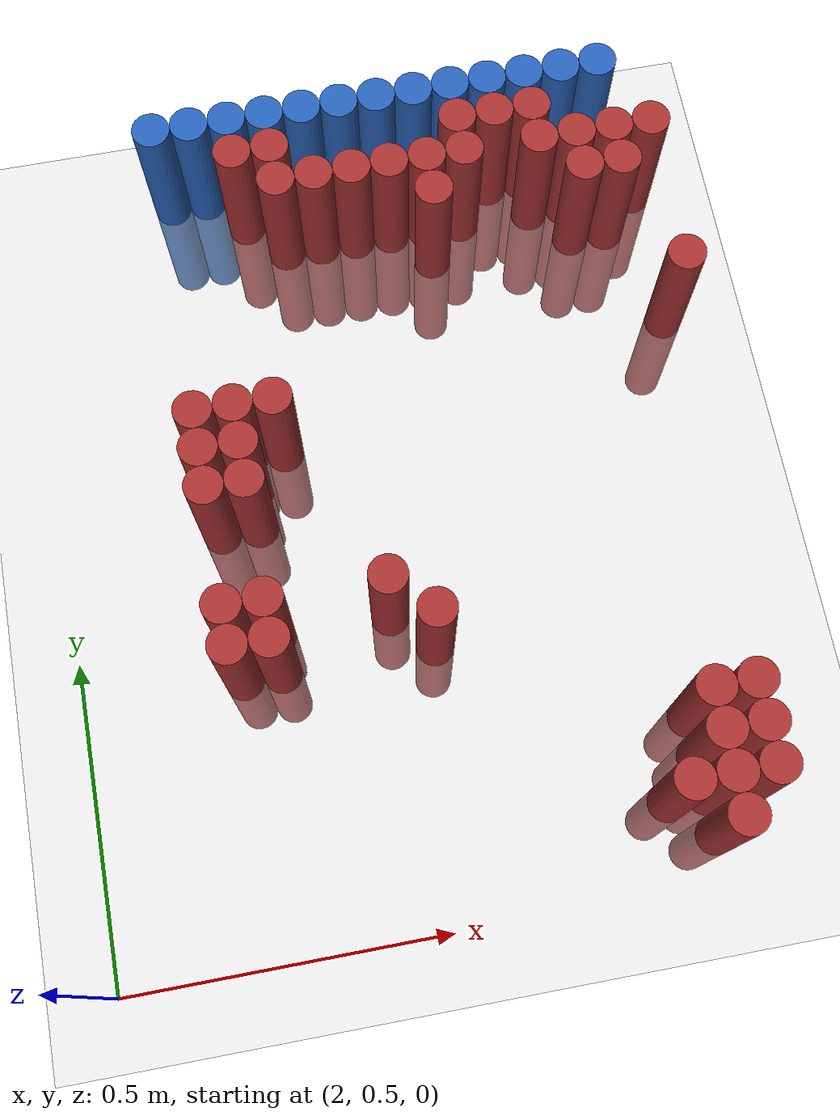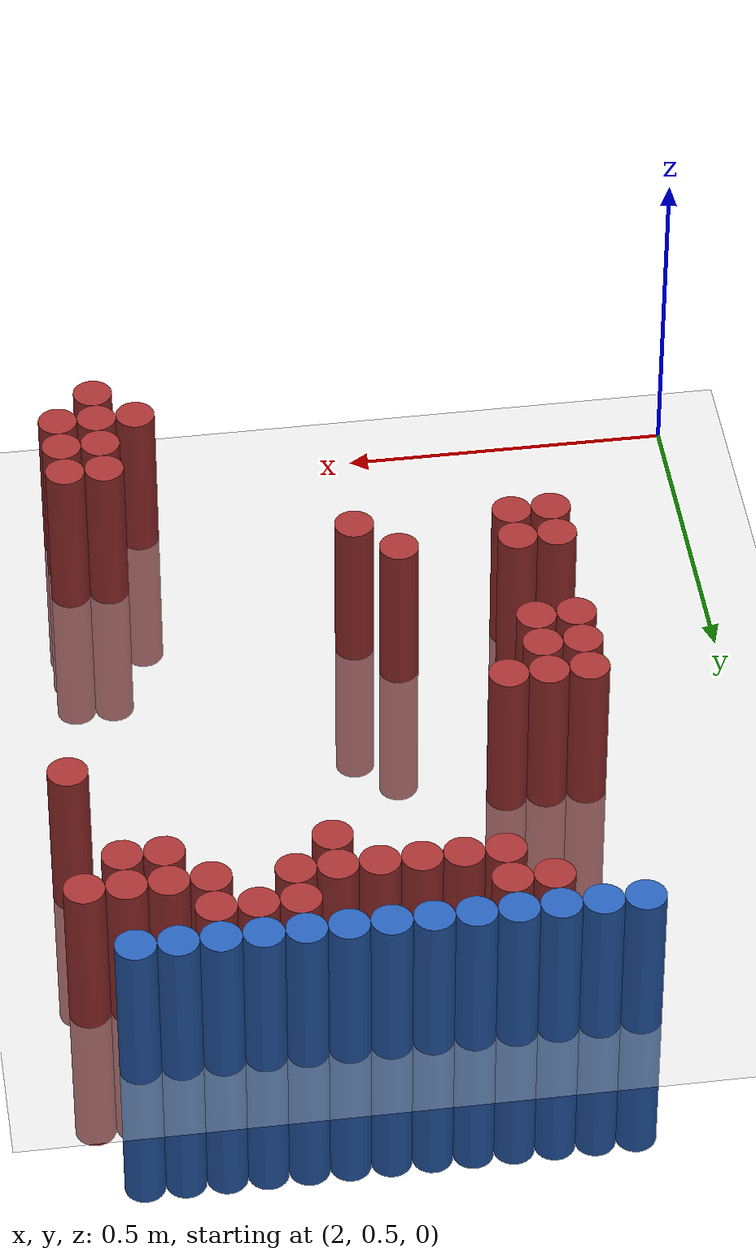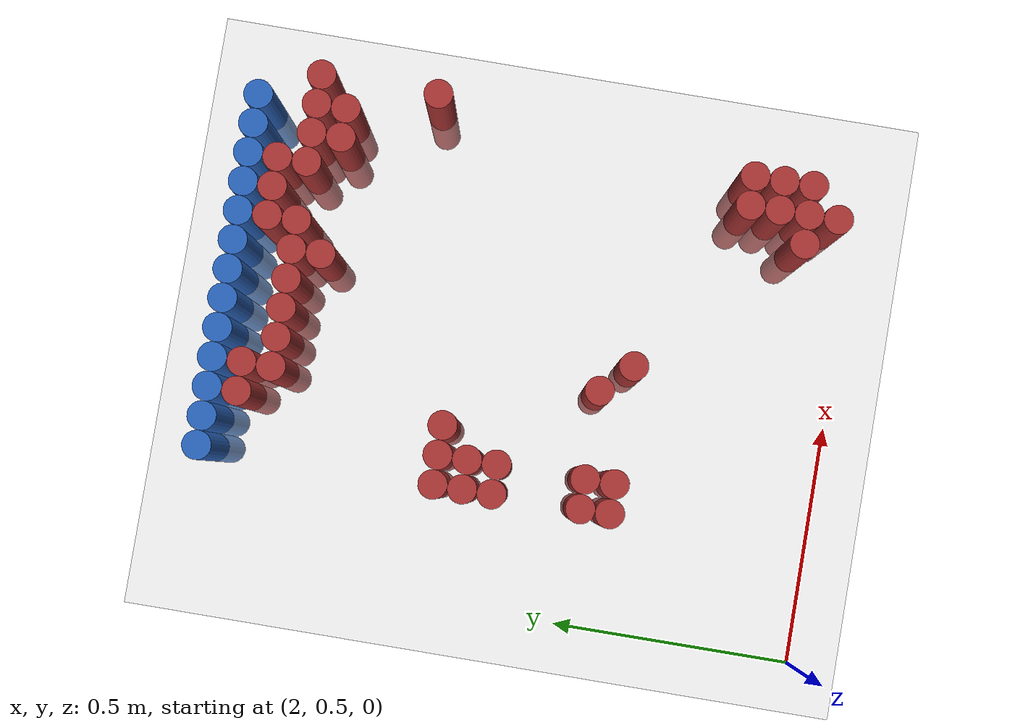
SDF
<sdf version="1.6">
 <world name="default">
  <model name="ground_plane">
   <static>1</static>
   <link name="link">
    <collision name="collision">
     <geometry><plane><normal>0 0 1</normal><size>100 100</size></plane></geometry>
     <surface><friction><ode><mu>100</mu><mu2>50</mu2></ode></friction></surface>
    </collision>
    <visual name="visual">
     <cast_shadows>0</cast_shadows>
     <geometry><plane><normal>0 0 1</normal><size>100 100</size></plane></geometry>
     <material>
      <script><uri>file://media/materials/scripts/gazebo.material</uri><name>Gazebo/Grey</name></script>
     </material>
    </visual>
   </link>
  </model>
  <model name="unit_cylinder_98">
   <static>1</static>
   <pose>2.250000 1.770000 0.000000 0.000000 0.000000 0.000000</pose>
   <link name="link">
    <inertial>
     <mass>1</mass>
     <inertia><ixx>0.145833</ixx><ixy>0</ixy><ixz>0</ixz><iyy>0.145833</iyy><iyz>0</iyz><izz>0.125</izz></inertia>
    </inertial>
    <collision name="collision">
     <geometry><cylinder><radius>0.030000</radius><length>0.5</length></cylinder></geometry>
    </collision>
    <visual name="visual">
     <geometry><cylinder><radius>0.030000</radius><length>0.5</length></cylinder></geometry>
     <material>
      <ambient>0.152000 0.379000 0.720000 1</ambient>
      <diffuse>0.152000 0.379000 0.720000 1</diffuse>
     </material>
     <material>
      <script><name>Gazebo/Grey</name><uri>file://media/materials/scripts/gazebo.material</uri></script>
     </material>
    </visual>
   </link>
  </model>
  <model name="unit_cylinder_99">
   <static>1</static>
   <pose>2.310000 1.770000 0.000000 0.000000 0.000000 0.000000</pose>
   <link name="link">
    <inertial>
     <mass>1</mass>
     <inertia><ixx>0.145833</ixx><ixy>0</ixy><ixz>0</ixz><iyy>0.145833</iyy><iyz>0</iyz><izz>0.125</izz></inertia>
    </inertial>
    <collision name="collision">
     <geometry><cylinder><radius>0.030000</radius><length>0.5</length></cylinder></geometry>
    </collision>
    <visual name="visual">
     <geometry><cylinder><radius>0.030000</radius><length>0.5</length></cylinder></geometry>
     <material>
      <ambient>0.152000 0.379000 0.720000 1</ambient>
      <diffuse>0.152000 0.379000 0.720000 1</diffuse>
     </material>
     <material>
      <script><name>Gazebo/Grey</name><uri>file://media/materials/scripts/gazebo.material</uri></script>
     </material>
    </visual>
   </link>
  </model>
  <model name="unit_cylinder_100">
   <static>1</static>
   <pose>2.370000 1.770000 0.000000 0.000000 0.000000 0.000000</pose>
   <link name="link">
    <inertial>
     <mass>1</mass>
     <inertia><ixx>0.145833</ixx><ixy>0</ixy><ixz>0</ixz><iyy>0.145833</iyy><iyz>0</iyz><izz>0.125</izz></inertia>
    </inertial>
    <collision name="collision">
     <geometry><cylinder><radius>0.030000</radius><length>0.5</length></cylinder></geometry>
    </collision>
    <visual name="visual">
     <geometry><cylinder><radius>0.030000</radius><length>0.5</length></cylinder></geometry>
     <material>
      <ambient>0.152000 0.379000 0.720000 1</ambient>
      <diffuse>0.152000 0.379000 0.720000 1</diffuse>
     </material>
     <material>
      <script><name>Gazebo/Grey</name><uri>file://media/materials/scripts/gazebo.material</uri></script>
     </material>
    </visual>
   </link>
  </model>
  <model name="unit_cylinder_101">
   <static>1</static>
   <pose>2.430000 1.770000 0.000000 0.000000 0.000000 0.000000</pose>
   <link name="link">
    <inertial>
     <mass>1</mass>
     <inertia><ixx>0.145833</ixx><ixy>0</ixy><ixz>0</ixz><iyy>0.145833</iyy><iyz>0</iyz><izz>0.125</izz></inertia>
    </inertial>
    <collision name="collision">
     <geometry><cylinder><radius>0.030000</radius><length>0.5</length></cylinder></geometry>
    </collision>
    <visual name="visual">
     <geometry><cylinder><radius>0.030000</radius><length>0.5</length></cylinder></geometry>
     <material>
      <ambient>0.152000 0.379000 0.720000 1</ambient>
      <diffuse>0.152000 0.379000 0.720000 1</diffuse>
     </material>
     <material>
      <script><name>Gazebo/Grey</name><uri>file://media/materials/scripts/gazebo.material</uri></script>
     </material>
    </visual>
   </link>
  </model>
  <model name="unit_cylinder_102">
   <static>1</static>
   <pose>2.490000 1.770000 0.000000 0.000000 0.000000 0.000000</pose>
   <link name="link">
    <inertial>
     <mass>1</mass>
     <inertia><ixx>0.145833</ixx><ixy>0</ixy><ixz>0</ixz><iyy>0.145833</iyy><iyz>0</iyz><izz>0.125</izz></inertia>
    </inertial>
    <collision name="collision">
     <geometry><cylinder><radius>0.030000</radius><length>0.5</length></cylinder></geometry>
    </collision>
    <visual name="visual">
     <geometry><cylinder><radius>0.030000</radius><length>0.5</length></cylinder></geometry>
     <material>
      <ambient>0.152000 0.379000 0.720000 1</ambient>
      <diffuse>0.152000 0.379000 0.720000 1</diffuse>
     </material>
     <material>
      <script><name>Gazebo/Grey</name><uri>file://media/materials/scripts/gazebo.material</uri></script>
     </material>
    </visual>
   </link>
  </model>
  <model name="unit_cylinder_103">
   <static>1</static>
   <pose>2.550000 1.770000 0.000000 0.000000 0.000000 0.000000</pose>
   <link name="link">
    <inertial>
     <mass>1</mass>
     <inertia><ixx>0.145833</ixx><ixy>0</ixy><ixz>0</ixz><iyy>0.145833</iyy><iyz>0</iyz><izz>0.125</izz></inertia>
    </inertial>
    <collision name="collision">
     <geometry><cylinder><radius>0.030000</radius><length>0.5</length></cylinder></geometry>
    </collision>
    <visual name="visual">
     <geometry><cylinder><radius>0.030000</radius><length>0.5</length></cylinder></geometry>
     <material>
      <ambient>0.152000 0.379000 0.720000 1</ambient>
      <diffuse>0.152000 0.379000 0.720000 1</diffuse>
     </material>
     <material>
      <script><name>Gazebo/Grey</name><uri>file://media/materials/scripts/gazebo.material</uri></script>
     </material>
    </visual>
   </link>
  </model>
  <model name="unit_cylinder_104">
   <static>1</static>
   <pose>2.610000 1.770000 0.000000 0.000000 0.000000 0.000000</pose>
   <link name="link">
    <inertial>
     <mass>1</mass>
     <inertia><ixx>0.145833</ixx><ixy>0</ixy><ixz>0</ixz><iyy>0.145833</iyy><iyz>0</iyz><izz>0.125</izz></inertia>
    </inertial>
    <collision name="collision">
     <geometry><cylinder><radius>0.030000</radius><length>0.5</length></cylinder></geometry>
    </collision>
    <visual name="visual">
     <geometry><cylinder><radius>0.030000</radius><length>0.5</length></cylinder></geometry>
     <material>
      <ambient>0.152000 0.379000 0.720000 1</ambient>
      <diffuse>0.152000 0.379000 0.720000 1</diffuse>
     </material>
     <material>
      <script><name>Gazebo/Grey</name><uri>file://media/materials/scripts/gazebo.material</uri></script>
     </material>
    </visual>
   </link>
  </model>
  <model name="unit_cylinder_105">
   <static>1</static>
   <pose>2.670000 1.770000 0.000000 0.000000 0.000000 0.000000</pose>
   <link name="link">
    <inertial>
     <mass>1</mass>
     <inertia><ixx>0.145833</ixx><ixy>0</ixy><ixz>0</ixz><iyy>0.145833</iyy><iyz>0</iyz><izz>0.125</izz></inertia>
    </inertial>
    <collision name="collision">
     <geometry><cylinder><radius>0.030000</radius><length>0.5</length></cylinder></geometry>
    </collision>
    <visual name="visual">
     <geometry><cylinder><radius>0.030000</radius><length>0.5</length></cylinder></geometry>
     <material>
      <ambient>0.152000 0.379000 0.720000 1</ambient>
      <diffuse>0.152000 0.379000 0.720000 1</diffuse>
     </material>
     <material>
      <script><name>Gazebo/Grey</name><uri>file://media/materials/scripts/gazebo.material</uri></script>
     </material>
    </visual>
   </link>
  </model>
  <model name="unit_cylinder_106">
   <static>1</static>
   <pose>2.730000 1.770000 0.000000 0.000000 0.000000 0.000000</pose>
   <link name="link">
    <inertial>
     <mass>1</mass>
     <inertia><ixx>0.145833</ixx><ixy>0</ixy><ixz>0</ixz><iyy>0.145833</iyy><iyz>0</iyz><izz>0.125</izz></inertia>
    </inertial>
    <collision name="collision">
     <geometry><cylinder><radius>0.030000</radius><length>0.5</length></cylinder></geometry>
    </collision>
    <visual name="visual">
     <geometry><cylinder><radius>0.030000</radius><length>0.5</length></cylinder></geometry>
     <material>
      <ambient>0.152000 0.379000 0.720000 1</ambient>
      <diffuse>0.152000 0.379000 0.720000 1</diffuse>
     </material>
     <material>
      <script><name>Gazebo/Grey</name><uri>file://media/materials/scripts/gazebo.material</uri></script>
     </material>
    </visual>
   </link>
  </model>
  <model name="unit_cylinder_107">
   <static>1</static>
   <pose>2.790000 1.770000 0.000000 0.000000 0.000000 0.000000</pose>
   <link name="link">
    <inertial>
     <mass>1</mass>
     <inertia><ixx>0.145833</ixx><ixy>0</ixy><ixz>0</ixz><iyy>0.145833</iyy><iyz>0</iyz><izz>0.125</izz></inertia>
    </inertial>
    <collision name="collision">
     <geometry><cylinder><radius>0.030000</radius><length>0.5</length></cylinder></geometry>
    </collision>
    <visual name="visual">
     <geometry><cylinder><radius>0.030000</radius><length>0.5</length></cylinder></geometry>
     <material>
      <ambient>0.152000 0.379000 0.720000 1</ambient>
      <diffuse>0.152000 0.379000 0.720000 1</diffuse>
     </material>
     <material>
      <script><name>Gazebo/Grey</name><uri>file://media/materials/scripts/gazebo.material</uri></script>
     </material>
    </visual>
   </link>
  </model>
  <model name="unit_cylinder_108">
   <static>1</static>
   <pose>2.850000 1.770000 0.000000 0.000000 0.000000 0.000000</pose>
   <link name="link">
    <inertial>
     <mass>1</mass>
     <inertia><ixx>0.145833</ixx><ixy>0</ixy><ixz>0</ixz><iyy>0.145833</iyy><iyz>0</iyz><izz>0.125</izz></inertia>
    </inertial>
    <collision name="collision">
     <geometry><cylinder><radius>0.030000</radius><length>0.5</length></cylinder></geometry>
    </collision>
    <visual name="visual">
     <geometry><cylinder><radius>0.030000</radius><length>0.5</length></cylinder></geometry>
     <material>
      <ambient>0.152000 0.379000 0.720000 1</ambient>
      <diffuse>0.152000 0.379000 0.720000 1</diffuse>
     </material>
     <material>
      <script><name>Gazebo/Grey</name><uri>file://media/materials/scripts/gazebo.material</uri></script>
     </material>
    </visual>
   </link>
  </model>
  <model name="unit_cylinder_109">
   <static>1</static>
   <pose>2.910000 1.770000 0.000000 0.000000 0.000000 0.000000</pose>
   <link name="link">
    <inertial>
     <mass>1</mass>
     <inertia><ixx>0.145833</ixx><ixy>0</ixy><ixz>0</ixz><iyy>0.145833</iyy><iyz>0</iyz><izz>0.125</izz></inertia>
    </inertial>
    <collision name="collision">
     <geometry><cylinder><radius>0.030000</radius><length>0.5</length></cylinder></geometry>
    </collision>
    <visual name="visual">
     <geometry><cylinder><radius>0.030000</radius><length>0.5</length></cylinder></geometry>
     <material>
      <ambient>0.152000 0.379000 0.720000 1</ambient>
      <diffuse>0.152000 0.379000 0.720000 1</diffuse>
     </material>
     <material>
      <script><name>Gazebo/Grey</name><uri>file://media/materials/scripts/gazebo.material</uri></script>
     </material>
    </visual>
   </link>
  </model>
  <model name="unit_cylinder_110">
   <static>1</static>
   <pose>2.970000 1.770000 0.000000 0.000000 0.000000 0.000000</pose>
   <link name="link">
    <inertial>
     <mass>1</mass>
     <inertia><ixx>0.145833</ixx><ixy>0</ixy><ixz>0</ixz><iyy>0.145833</iyy><iyz>0</iyz><izz>0.125</izz></inertia>
    </inertial>
    <collision name="collision">
     <geometry><cylinder><radius>0.030000</radius><length>0.5</length></cylinder></geometry>
    </collision>
    <visual name="visual">
     <geometry><cylinder><radius>0.030000</radius><length>0.5</length></cylinder></geometry>
     <material>
      <ambient>0.152000 0.379000 0.720000 1</ambient>
      <diffuse>0.152000 0.379000 0.720000 1</diffuse>
     </material>
     <material>
      <script><name>Gazebo/Grey</name><uri>file://media/materials/scripts/gazebo.material</uri></script>
     </material>
    </visual>
   </link>
  </model>
  <model name="unit_cylinder_125">
   <static>1</static>
   <pose>2.370000 1.710000 0.000000 0.000000 0.000000 0.000000</pose>
   <link name="link">
    <inertial>
     <mass>1</mass>
     <inertia><ixx>0.145833</ixx><ixy>0</ixy><ixz>0</ixz><iyy>0.145833</iyy><iyz>0</iyz><izz>0.125</izz></inertia>
    </inertial>
    <collision name="collision">
     <geometry><cylinder><radius>0.030000</radius><length>0.5</length></cylinder></geometry>
    </collision>
    <visual name="visual">
     <geometry><cylinder><radius>0.030000</radius><length>0.5</length></cylinder></geometry>
     <material>
      <ambient>0.648000 0.192000 0.192000 1</ambient>
      <diffuse>0.648000 0.192000 0.192000 1</diffuse>
     </material>
     <material>
      <script><name>Gazebo/Grey</name><uri>file://media/materials/scripts/gazebo.material</uri></script>
     </material>
    </visual>
   </link>
  </model>
  <model name="unit_cylinder_126">
   <static>1</static>
   <pose>2.430000 1.710000 0.000000 0.000000 0.000000 0.000000</pose>
   <link name="link">
    <inertial>
     <mass>1</mass>
     <inertia><ixx>0.145833</ixx><ixy>0</ixy><ixz>0</ixz><iyy>0.145833</iyy><iyz>0</iyz><izz>0.125</izz></inertia>
    </inertial>
    <collision name="collision">
     <geometry><cylinder><radius>0.030000</radius><length>0.5</length></cylinder></geometry>
    </collision>
    <visual name="visual">
     <geometry><cylinder><radius>0.030000</radius><length>0.5</length></cylinder></geometry>
     <material>
      <ambient>0.648000 0.192000 0.192000 1</ambient>
      <diffuse>0.648000 0.192000 0.192000 1</diffuse>
     </material>
     <material>
      <script><name>Gazebo/Grey</name><uri>file://media/materials/scripts/gazebo.material</uri></script>
     </material>
    </visual>
   </link>
  </model>
  <model name="unit_cylinder_127">
   <static>1</static>
   <pose>2.730000 1.710000 0.000000 0.000000 0.000000 0.000000</pose>
   <link name="link">
    <inertial>
     <mass>1</mass>
     <inertia><ixx>0.145833</ixx><ixy>0</ixy><ixz>0</ixz><iyy>0.145833</iyy><iyz>0</iyz><izz>0.125</izz></inertia>
    </inertial>
    <collision name="collision">
     <geometry><cylinder><radius>0.030000</radius><length>0.5</length></cylinder></geometry>
    </collision>
    <visual name="visual">
     <geometry><cylinder><radius>0.030000</radius><length>0.5</length></cylinder></geometry>
     <material>
      <ambient>0.648000 0.192000 0.192000 1</ambient>
      <diffuse>0.648000 0.192000 0.192000 1</diffuse>
     </material>
     <material>
      <script><name>Gazebo/Grey</name><uri>file://media/materials/scripts/gazebo.material</uri></script>
     </material>
    </visual>
   </link>
  </model>
  <model name="unit_cylinder_128">
   <static>1</static>
   <pose>2.790000 1.710000 0.000000 0.000000 0.000000 0.000000</pose>
   <link name="link">
    <inertial>
     <mass>1</mass>
     <inertia><ixx>0.145833</ixx><ixy>0</ixy><ixz>0</ixz><iyy>0.145833</iyy><iyz>0</iyz><izz>0.125</izz></inertia>
    </inertial>
    <collision name="collision">
     <geometry><cylinder><radius>0.030000</radius><length>0.5</length></cylinder></geometry>
    </collision>
    <visual name="visual">
     <geometry><cylinder><radius>0.030000</radius><length>0.5</length></cylinder></geometry>
     <material>
      <ambient>0.648000 0.192000 0.192000 1</ambient>
      <diffuse>0.648000 0.192000 0.192000 1</diffuse>
     </material>
     <material>
      <script><name>Gazebo/Grey</name><uri>file://media/materials/scripts/gazebo.material</uri></script>
     </material>
    </visual>
   </link>
  </model>
  <model name="unit_cylinder_129">
   <static>1</static>
   <pose>2.850000 1.710000 0.000000 0.000000 0.000000 0.000000</pose>
   <link name="link">
    <inertial>
     <mass>1</mass>
     <inertia><ixx>0.145833</ixx><ixy>0</ixy><ixz>0</ixz><iyy>0.145833</iyy><iyz>0</iyz><izz>0.125</izz></inertia>
    </inertial>
    <collision name="collision">
     <geometry><cylinder><radius>0.030000</radius><length>0.5</length></cylinder></geometry>
    </collision>
    <visual name="visual">
     <geometry><cylinder><radius>0.030000</radius><length>0.5</length></cylinder></geometry>
     <material>
      <ambient>0.648000 0.192000 0.192000 1</ambient>
      <diffuse>0.648000 0.192000 0.192000 1</diffuse>
     </material>
     <material>
      <script><name>Gazebo/Grey</name><uri>file://media/materials/scripts/gazebo.material</uri></script>
     </material>
    </visual>
   </link>
  </model>
  <model name="unit_cylinder_136">
   <static>1</static>
   <pose>2.430000 1.650000 0.000000 0.000000 0.000000 0.000000</pose>
   <link name="link">
    <inertial>
     <mass>1</mass>
     <inertia><ixx>0.145833</ixx><ixy>0</ixy><ixz>0</ixz><iyy>0.145833</iyy><iyz>0</iyz><izz>0.125</izz></inertia>
    </inertial>
    <collision name="collision">
     <geometry><cylinder><radius>0.030000</radius><length>0.5</length></cylinder></geometry>
    </collision>
    <visual name="visual">
     <geometry><cylinder><radius>0.030000</radius><length>0.5</length></cylinder></geometry>
     <material>
      <ambient>0.648000 0.192000 0.192000 1</ambient>
      <diffuse>0.648000 0.192000 0.192000 1</diffuse>
     </material>
     <material>
      <script><name>Gazebo/Grey</name><uri>file://media/materials/scripts/gazebo.material</uri></script>
     </material>
    </visual>
   </link>
  </model>
  <model name="unit_cylinder_137">
   <static>1</static>
   <pose>2.490000 1.650000 0.000000 0.000000 0.000000 0.000000</pose>
   <link name="link">
    <inertial>
     <mass>1</mass>
     <inertia><ixx>0.145833</ixx><ixy>0</ixy><ixz>0</ixz><iyy>0.145833</iyy><iyz>0</iyz><izz>0.125</izz></inertia>
    </inertial>
    <collision name="collision">
     <geometry><cylinder><radius>0.030000</radius><length>0.5</length></cylinder></geometry>
    </collision>
    <visual name="visual">
     <geometry><cylinder><radius>0.030000</radius><length>0.5</length></cylinder></geometry>
     <material>
      <ambient>0.648000 0.192000 0.192000 1</ambient>
      <diffuse>0.648000 0.192000 0.192000 1</diffuse>
     </material>
     <material>
      <script><name>Gazebo/Grey</name><uri>file://media/materials/scripts/gazebo.material</uri></script>
     </material>
    </visual>
   </link>
  </model>
  <model name="unit_cylinder_138">
   <static>1</static>
   <pose>2.550000 1.650000 0.000000 0.000000 0.000000 0.000000</pose>
   <link name="link">
    <inertial>
     <mass>1</mass>
     <inertia><ixx>0.145833</ixx><ixy>0</ixy><ixz>0</ixz><iyy>0.145833</iyy><iyz>0</iyz><izz>0.125</izz></inertia>
    </inertial>
    <collision name="collision">
     <geometry><cylinder><radius>0.030000</radius><length>0.5</length></cylinder></geometry>
    </collision>
    <visual name="visual">
     <geometry><cylinder><radius>0.030000</radius><length>0.5</length></cylinder></geometry>
     <material>
      <ambient>0.648000 0.192000 0.192000 1</ambient>
      <diffuse>0.648000 0.192000 0.192000 1</diffuse>
     </material>
     <material>
      <script><name>Gazebo/Grey</name><uri>file://media/materials/scripts/gazebo.material</uri></script>
     </material>
    </visual>
   </link>
  </model>
  <model name="unit_cylinder_139">
   <static>1</static>
   <pose>2.610000 1.650000 0.000000 0.000000 0.000000 0.000000</pose>
   <link name="link">
    <inertial>
     <mass>1</mass>
     <inertia><ixx>0.145833</ixx><ixy>0</ixy><ixz>0</ixz><iyy>0.145833</iyy><iyz>0</iyz><izz>0.125</izz></inertia>
    </inertial>
    <collision name="collision">
     <geometry><cylinder><radius>0.030000</radius><length>0.5</length></cylinder></geometry>
    </collision>
    <visual name="visual">
     <geometry><cylinder><radius>0.030000</radius><length>0.5</length></cylinder></geometry>
     <material>
      <ambient>0.648000 0.192000 0.192000 1</ambient>
      <diffuse>0.648000 0.192000 0.192000 1</diffuse>
     </material>
     <material>
      <script><name>Gazebo/Grey</name><uri>file://media/materials/scripts/gazebo.material</uri></script>
     </material>
    </visual>
   </link>
  </model>
  <model name="unit_cylinder_140">
   <static>1</static>
   <pose>2.670000 1.650000 0.000000 0.000000 0.000000 0.000000</pose>
   <link name="link">
    <inertial>
     <mass>1</mass>
     <inertia><ixx>0.145833</ixx><ixy>0</ixy><ixz>0</ixz><iyy>0.145833</iyy><iyz>0</iyz><izz>0.125</izz></inertia>
    </inertial>
    <collision name="collision">
     <geometry><cylinder><radius>0.030000</radius><length>0.5</length></cylinder></geometry>
    </collision>
    <visual name="visual">
     <geometry><cylinder><radius>0.030000</radius><length>0.5</length></cylinder></geometry>
     <material>
      <ambient>0.648000 0.192000 0.192000 1</ambient>
      <diffuse>0.648000 0.192000 0.192000 1</diffuse>
     </material>
     <material>
      <script><name>Gazebo/Grey</name><uri>file://media/materials/scripts/gazebo.material</uri></script>
     </material>
    </visual>
   </link>
  </model>
  <model name="unit_cylinder_141">
   <static>1</static>
   <pose>2.730000 1.650000 0.000000 0.000000 0.000000 0.000000</pose>
   <link name="link">
    <inertial>
     <mass>1</mass>
     <inertia><ixx>0.145833</ixx><ixy>0</ixy><ixz>0</ixz><iyy>0.145833</iyy><iyz>0</iyz><izz>0.125</izz></inertia>
    </inertial>
    <collision name="collision">
     <geometry><cylinder><radius>0.030000</radius><length>0.5</length></cylinder></geometry>
    </collision>
    <visual name="visual">
     <geometry><cylinder><radius>0.030000</radius><length>0.5</length></cylinder></geometry>
     <material>
      <ambient>0.648000 0.192000 0.192000 1</ambient>
      <diffuse>0.648000 0.192000 0.192000 1</diffuse>
     </material>
     <material>
      <script><name>Gazebo/Grey</name><uri>file://media/materials/scripts/gazebo.material</uri></script>
     </material>
    </visual>
   </link>
  </model>
  <model name="unit_cylinder_142">
   <static>1</static>
   <pose>2.850000 1.650000 0.000000 0.000000 0.000000 0.000000</pose>
   <link name="link">
    <inertial>
     <mass>1</mass>
     <inertia><ixx>0.145833</ixx><ixy>0</ixy><ixz>0</ixz><iyy>0.145833</iyy><iyz>0</iyz><izz>0.125</izz></inertia>
    </inertial>
    <collision name="collision">
     <geometry><cylinder><radius>0.030000</radius><length>0.5</length></cylinder></geometry>
    </collision>
    <visual name="visual">
     <geometry><cylinder><radius>0.030000</radius><length>0.5</length></cylinder></geometry>
     <material>
      <ambient>0.648000 0.192000 0.192000 1</ambient>
      <diffuse>0.648000 0.192000 0.192000 1</diffuse>
     </material>
     <material>
      <script><name>Gazebo/Grey</name><uri>file://media/materials/scripts/gazebo.material</uri></script>
     </material>
    </visual>
   </link>
  </model>
  <model name="unit_cylinder_143">
   <static>1</static>
   <pose>2.910000 1.650000 0.000000 0.000000 0.000000 0.000000</pose>
   <link name="link">
    <inertial>
     <mass>1</mass>
     <inertia><ixx>0.145833</ixx><ixy>0</ixy><ixz>0</ixz><iyy>0.145833</iyy><iyz>0</iyz><izz>0.125</izz></inertia>
    </inertial>
    <collision name="collision">
     <geometry><cylinder><radius>0.030000</radius><length>0.5</length></cylinder></geometry>
    </collision>
    <visual name="visual">
     <geometry><cylinder><radius>0.030000</radius><length>0.5</length></cylinder></geometry>
     <material>
      <ambient>0.648000 0.192000 0.192000 1</ambient>
      <diffuse>0.648000 0.192000 0.192000 1</diffuse>
     </material>
     <material>
      <script><name>Gazebo/Grey</name><uri>file://media/materials/scripts/gazebo.material</uri></script>
     </material>
    </visual>
   </link>
  </model>
  <model name="unit_cylinder_144">
   <static>1</static>
   <pose>2.970000 1.650000 0.000000 0.000000 0.000000 0.000000</pose>
   <link name="link">
    <inertial>
     <mass>1</mass>
     <inertia><ixx>0.145833</ixx><ixy>0</ixy><ixz>0</ixz><iyy>0.145833</iyy><iyz>0</iyz><izz>0.125</izz></inertia>
    </inertial>
    <collision name="collision">
     <geometry><cylinder><radius>0.030000</radius><length>0.5</length></cylinder></geometry>
    </collision>
    <visual name="visual">
     <geometry><cylinder><radius>0.030000</radius><length>0.5</length></cylinder></geometry>
     <material>
      <ambient>0.648000 0.192000 0.192000 1</ambient>
      <diffuse>0.648000 0.192000 0.192000 1</diffuse>
     </material>
     <material>
      <script><name>Gazebo/Grey</name><uri>file://media/materials/scripts/gazebo.material</uri></script>
     </material>
    </visual>
   </link>
  </model>
  <model name="unit_cylinder_145">
   <static>1</static>
   <pose>3.030000 1.650000 0.000000 0.000000 0.000000 0.000000</pose>
   <link name="link">
    <inertial>
     <mass>1</mass>
     <inertia><ixx>0.145833</ixx><ixy>0</ixy><ixz>0</ixz><iyy>0.145833</iyy><iyz>0</iyz><izz>0.125</izz></inertia>
    </inertial>
    <collision name="collision">
     <geometry><cylinder><radius>0.030000</radius><length>0.5</length></cylinder></geometry>
    </collision>
    <visual name="visual">
     <geometry><cylinder><radius>0.030000</radius><length>0.5</length></cylinder></geometry>
     <material>
      <ambient>0.648000 0.192000 0.192000 1</ambient>
      <diffuse>0.648000 0.192000 0.192000 1</diffuse>
     </material>
     <material>
      <script><name>Gazebo/Grey</name><uri>file://media/materials/scripts/gazebo.material</uri></script>
     </material>
    </visual>
   </link>
  </model>
  <model name="unit_cylinder_149">
   <static>1</static>
   <pose>2.670000 1.590000 0.000000 0.000000 0.000000 0.000000</pose>
   <link name="link">
    <inertial>
     <mass>1</mass>
     <inertia><ixx>0.145833</ixx><ixy>0</ixy><ixz>0</ixz><iyy>0.145833</iyy><iyz>0</iyz><izz>0.125</izz></inertia>
    </inertial>
    <collision name="collision">
     <geometry><cylinder><radius>0.030000</radius><length>0.5</length></cylinder></geometry>
    </collision>
    <visual name="visual">
     <geometry><cylinder><radius>0.030000</radius><length>0.5</length></cylinder></geometry>
     <material>
      <ambient>0.648000 0.192000 0.192000 1</ambient>
      <diffuse>0.648000 0.192000 0.192000 1</diffuse>
     </material>
     <material>
      <script><name>Gazebo/Grey</name><uri>file://media/materials/scripts/gazebo.material</uri></script>
     </material>
    </visual>
   </link>
  </model>
  <model name="unit_cylinder_150">
   <static>1</static>
   <pose>2.910000 1.590000 0.000000 0.000000 0.000000 0.000000</pose>
   <link name="link">
    <inertial>
     <mass>1</mass>
     <inertia><ixx>0.145833</ixx><ixy>0</ixy><ixz>0</ixz><iyy>0.145833</iyy><iyz>0</iyz><izz>0.125</izz></inertia>
    </inertial>
    <collision name="collision">
     <geometry><cylinder><radius>0.030000</radius><length>0.5</length></cylinder></geometry>
    </collision>
    <visual name="visual">
     <geometry><cylinder><radius>0.030000</radius><length>0.5</length></cylinder></geometry>
     <material>
      <ambient>0.648000 0.192000 0.192000 1</ambient>
      <diffuse>0.648000 0.192000 0.192000 1</diffuse>
     </material>
     <material>
      <script><name>Gazebo/Grey</name><uri>file://media/materials/scripts/gazebo.material</uri></script>
     </material>
    </visual>
   </link>
  </model>
  <model name="unit_cylinder_151">
   <static>1</static>
   <pose>2.970000 1.590000 0.000000 0.000000 0.000000 0.000000</pose>
   <link name="link">
    <inertial>
     <mass>1</mass>
     <inertia><ixx>0.145833</ixx><ixy>0</ixy><ixz>0</ixz><iyy>0.145833</iyy><iyz>0</iyz><izz>0.125</izz></inertia>
    </inertial>
    <collision name="collision">
     <geometry><cylinder><radius>0.030000</radius><length>0.5</length></cylinder></geometry>
    </collision>
    <visual name="visual">
     <geometry><cylinder><radius>0.030000</radius><length>0.5</length></cylinder></geometry>
     <material>
      <ambient>0.648000 0.192000 0.192000 1</ambient>
      <diffuse>0.648000 0.192000 0.192000 1</diffuse>
     </material>
     <material>
      <script><name>Gazebo/Grey</name><uri>file://media/materials/scripts/gazebo.material</uri></script>
     </material>
    </visual>
   </link>
  </model>
  <model name="unit_cylinder_158">
   <static>1</static>
   <pose>3.030000 1.410000 0.000000 0.000000 0.000000 0.000000</pose>
   <link name="link">
    <inertial>
     <mass>1</mass>
     <inertia><ixx>0.145833</ixx><ixy>0</ixy><ixz>0</ixz><iyy>0.145833</iyy><iyz>0</iyz><izz>0.125</izz></inertia>
    </inertial>
    <collision name="collision">
     <geometry><cylinder><radius>0.030000</radius><length>0.5</length></cylinder></geometry>
    </collision>
    <visual name="visual">
     <geometry><cylinder><radius>0.030000</radius><length>0.5</length></cylinder></geometry>
     <material>
      <ambient>0.648000 0.192000 0.192000 1</ambient>
      <diffuse>0.648000 0.192000 0.192000 1</diffuse>
     </material>
     <material>
      <script><name>Gazebo/Grey</name><uri>file://media/materials/scripts/gazebo.material</uri></script>
     </material>
    </visual>
   </link>
  </model>
  <model name="unit_cylinder_161">
   <static>1</static>
   <pose>2.250000 1.290000 0.000000 0.000000 0.000000 0.000000</pose>
   <link name="link">
    <inertial>
     <mass>1</mass>
     <inertia><ixx>0.145833</ixx><ixy>0</ixy><ixz>0</ixz><iyy>0.145833</iyy><iyz>0</iyz><izz>0.125</izz></inertia>
    </inertial>
    <collision name="collision">
     <geometry><cylinder><radius>0.030000</radius><length>0.5</length></cylinder></geometry>
    </collision>
    <visual name="visual">
     <geometry><cylinder><radius>0.030000</radius><length>0.5</length></cylinder></geometry>
     <material>
      <ambient>0.648000 0.192000 0.192000 1</ambient>
      <diffuse>0.648000 0.192000 0.192000 1</diffuse>
     </material>
     <material>
      <script><name>Gazebo/Grey</name><uri>file://media/materials/scripts/gazebo.material</uri></script>
     </material>
    </visual>
   </link>
  </model>
  <model name="unit_cylinder_162">
   <static>1</static>
   <pose>2.310000 1.290000 0.000000 0.000000 0.000000 0.000000</pose>
   <link name="link">
    <inertial>
     <mass>1</mass>
     <inertia><ixx>0.145833</ixx><ixy>0</ixy><ixz>0</ixz><iyy>0.145833</iyy><iyz>0</iyz><izz>0.125</izz></inertia>
    </inertial>
    <collision name="collision">
     <geometry><cylinder><radius>0.030000</radius><length>0.5</length></cylinder></geometry>
    </collision>
    <visual name="visual">
     <geometry><cylinder><radius>0.030000</radius><length>0.5</length></cylinder></geometry>
     <material>
      <ambient>0.648000 0.192000 0.192000 1</ambient>
      <diffuse>0.648000 0.192000 0.192000 1</diffuse>
     </material>
     <material>
      <script><name>Gazebo/Grey</name><uri>file://media/materials/scripts/gazebo.material</uri></script>
     </material>
    </visual>
   </link>
  </model>
  <model name="unit_cylinder_163">
   <static>1</static>
   <pose>2.370000 1.290000 0.000000 0.000000 0.000000 0.000000</pose>
   <link name="link">
    <inertial>
     <mass>1</mass>
     <inertia><ixx>0.145833</ixx><ixy>0</ixy><ixz>0</ixz><iyy>0.145833</iyy><iyz>0</iyz><izz>0.125</izz></inertia>
    </inertial>
    <collision name="collision">
     <geometry><cylinder><radius>0.030000</radius><length>0.5</length></cylinder></geometry>
    </collision>
    <visual name="visual">
     <geometry><cylinder><radius>0.030000</radius><length>0.5</length></cylinder></geometry>
     <material>
      <ambient>0.648000 0.192000 0.192000 1</ambient>
      <diffuse>0.648000 0.192000 0.192000 1</diffuse>
     </material>
     <material>
      <script><name>Gazebo/Grey</name><uri>file://media/materials/scripts/gazebo.material</uri></script>
     </material>
    </visual>
   </link>
  </model>
  <model name="unit_cylinder_165">
   <static>1</static>
   <pose>2.250000 1.230000 0.000000 0.000000 0.000000 0.000000</pose>
   <link name="link">
    <inertial>
     <mass>1</mass>
     <inertia><ixx>0.145833</ixx><ixy>0</ixy><ixz>0</ixz><iyy>0.145833</iyy><iyz>0</iyz><izz>0.125</izz></inertia>
    </inertial>
    <collision name="collision">
     <geometry><cylinder><radius>0.030000</radius><length>0.5</length></cylinder></geometry>
    </collision>
    <visual name="visual">
     <geometry><cylinder><radius>0.030000</radius><length>0.5</length></cylinder></geometry>
     <material>
      <ambient>0.648000 0.192000 0.192000 1</ambient>
      <diffuse>0.648000 0.192000 0.192000 1</diffuse>
     </material>
     <material>
      <script><name>Gazebo/Grey</name><uri>file://media/materials/scripts/gazebo.material</uri></script>
     </material>
    </visual>
   </link>
  </model>
  <model name="unit_cylinder_166">
   <static>1</static>
   <pose>2.310000 1.230000 0.000000 0.000000 0.000000 0.000000</pose>
   <link name="link">
    <inertial>
     <mass>1</mass>
     <inertia><ixx>0.145833</ixx><ixy>0</ixy><ixz>0</ixz><iyy>0.145833</iyy><iyz>0</iyz><izz>0.125</izz></inertia>
    </inertial>
    <collision name="collision">
     <geometry><cylinder><radius>0.030000</radius><length>0.5</length></cylinder></geometry>
    </collision>
    <visual name="visual">
     <geometry><cylinder><radius>0.030000</radius><length>0.5</length></cylinder></geometry>
     <material>
      <ambient>0.648000 0.192000 0.192000 1</ambient>
      <diffuse>0.648000 0.192000 0.192000 1</diffuse>
     </material>
     <material>
      <script><name>Gazebo/Grey</name><uri>file://media/materials/scripts/gazebo.material</uri></script>
     </material>
    </visual>
   </link>
  </model>
  <model name="unit_cylinder_167">
   <static>1</static>
   <pose>2.250000 1.170000 0.000000 0.000000 0.000000 0.000000</pose>
   <link name="link">
    <inertial>
     <mass>1</mass>
     <inertia><ixx>0.145833</ixx><ixy>0</ixy><ixz>0</ixz><iyy>0.145833</iyy><iyz>0</iyz><izz>0.125</izz></inertia>
    </inertial>
    <collision name="collision">
     <geometry><cylinder><radius>0.030000</radius><length>0.5</length></cylinder></geometry>
    </collision>
    <visual name="visual">
     <geometry><cylinder><radius>0.030000</radius><length>0.5</length></cylinder></geometry>
     <material>
      <ambient>0.648000 0.192000 0.192000 1</ambient>
      <diffuse>0.648000 0.192000 0.192000 1</diffuse>
     </material>
     <material>
      <script><name>Gazebo/Grey</name><uri>file://media/materials/scripts/gazebo.material</uri></script>
     </material>
    </visual>
   </link>
  </model>
  <model name="unit_cylinder_168">
   <static>1</static>
   <pose>2.310000 1.170000 0.000000 0.000000 0.000000 0.000000</pose>
   <link name="link">
    <inertial>
     <mass>1</mass>
     <inertia><ixx>0.145833</ixx><ixy>0</ixy><ixz>0</ixz><iyy>0.145833</iyy><iyz>0</iyz><izz>0.125</izz></inertia>
    </inertial>
    <collision name="collision">
     <geometry><cylinder><radius>0.030000</radius><length>0.5</length></cylinder></geometry>
    </collision>
    <visual name="visual">
     <geometry><cylinder><radius>0.030000</radius><length>0.5</length></cylinder></geometry>
     <material>
      <ambient>0.648000 0.192000 0.192000 1</ambient>
      <diffuse>0.648000 0.192000 0.192000 1</diffuse>
     </material>
     <material>
      <script><name>Gazebo/Grey</name><uri>file://media/materials/scripts/gazebo.material</uri></script>
     </material>
    </visual>
   </link>
  </model>
  <model name="unit_cylinder_174">
   <static>1</static>
   <pose>2.250000 0.990000 0.000000 0.000000 0.000000 0.000000</pose>
   <link name="link">
    <inertial>
     <mass>1</mass>
     <inertia><ixx>0.145833</ixx><ixy>0</ixy><ixz>0</ixz><iyy>0.145833</iyy><iyz>0</iyz><izz>0.125</izz></inertia>
    </inertial>
    <collision name="collision">
     <geometry><cylinder><radius>0.030000</radius><length>0.5</length></cylinder></geometry>
    </collision>
    <visual name="visual">
     <geometry><cylinder><radius>0.030000</radius><length>0.5</length></cylinder></geometry>
     <material>
      <ambient>0.648000 0.192000 0.192000 1</ambient>
      <diffuse>0.648000 0.192000 0.192000 1</diffuse>
     </material>
     <material>
      <script><name>Gazebo/Grey</name><uri>file://media/materials/scripts/gazebo.material</uri></script>
     </material>
    </visual>
   </link>
  </model>
  <model name="unit_cylinder_175">
   <static>1</static>
   <pose>2.310000 0.990000 0.000000 0.000000 0.000000 0.000000</pose>
   <link name="link">
    <inertial>
     <mass>1</mass>
     <inertia><ixx>0.145833</ixx><ixy>0</ixy><ixz>0</ixz><iyy>0.145833</iyy><iyz>0</iyz><izz>0.125</izz></inertia>
    </inertial>
    <collision name="collision">
     <geometry><cylinder><radius>0.030000</radius><length>0.5</length></cylinder></geometry>
    </collision>
    <visual name="visual">
     <geometry><cylinder><radius>0.030000</radius><length>0.5</length></cylinder></geometry>
     <material>
      <ambient>0.648000 0.192000 0.192000 1</ambient>
      <diffuse>0.648000 0.192000 0.192000 1</diffuse>
     </material>
     <material>
      <script><name>Gazebo/Grey</name><uri>file://media/materials/scripts/gazebo.material</uri></script>
     </material>
    </visual>
   </link>
  </model>
  <model name="unit_cylinder_176">
   <static>1</static>
   <pose>2.490000 0.990000 0.000000 0.000000 0.000000 0.000000</pose>
   <link name="link">
    <inertial>
     <mass>1</mass>
     <inertia><ixx>0.145833</ixx><ixy>0</ixy><ixz>0</ixz><iyy>0.145833</iyy><iyz>0</iyz><izz>0.125</izz></inertia>
    </inertial>
    <collision name="collision">
     <geometry><cylinder><radius>0.030000</radius><length>0.5</length></cylinder></geometry>
    </collision>
    <visual name="visual">
     <geometry><cylinder><radius>0.030000</radius><length>0.5</length></cylinder></geometry>
     <material>
      <ambient>0.648000 0.192000 0.192000 1</ambient>
      <diffuse>0.648000 0.192000 0.192000 1</diffuse>
     </material>
     <material>
      <script><name>Gazebo/Grey</name><uri>file://media/materials/scripts/gazebo.material</uri></script>
     </material>
    </visual>
   </link>
  </model>
  <model name="unit_cylinder_184">
   <static>1</static>
   <pose>2.250000 0.930000 0.000000 0.000000 0.000000 0.000000</pose>
   <link name="link">
    <inertial>
     <mass>1</mass>
     <inertia><ixx>0.145833</ixx><ixy>0</ixy><ixz>0</ixz><iyy>0.145833</iyy><iyz>0</iyz><izz>0.125</izz></inertia>
    </inertial>
    <collision name="collision">
     <geometry><cylinder><radius>0.030000</radius><length>0.5</length></cylinder></geometry>
    </collision>
    <visual name="visual">
     <geometry><cylinder><radius>0.030000</radius><length>0.5</length></cylinder></geometry>
     <material>
      <ambient>0.648000 0.192000 0.192000 1</ambient>
      <diffuse>0.648000 0.192000 0.192000 1</diffuse>
     </material>
     <material>
      <script><name>Gazebo/Grey</name><uri>file://media/materials/scripts/gazebo.material</uri></script>
     </material>
    </visual>
   </link>
  </model>
  <model name="unit_cylinder_185">
   <static>1</static>
   <pose>2.310000 0.930000 0.000000 0.000000 0.000000 0.000000</pose>
   <link name="link">
    <inertial>
     <mass>1</mass>
     <inertia><ixx>0.145833</ixx><ixy>0</ixy><ixz>0</ixz><iyy>0.145833</iyy><iyz>0</iyz><izz>0.125</izz></inertia>
    </inertial>
    <collision name="collision">
     <geometry><cylinder><radius>0.030000</radius><length>0.5</length></cylinder></geometry>
    </collision>
    <visual name="visual">
     <geometry><cylinder><radius>0.030000</radius><length>0.5</length></cylinder></geometry>
     <material>
      <ambient>0.648000 0.192000 0.192000 1</ambient>
      <diffuse>0.648000 0.192000 0.192000 1</diffuse>
     </material>
     <material>
      <script><name>Gazebo/Grey</name><uri>file://media/materials/scripts/gazebo.material</uri></script>
     </material>
    </visual>
   </link>
  </model>
  <model name="unit_cylinder_186">
   <static>1</static>
   <pose>2.550000 0.930000 0.000000 0.000000 0.000000 0.000000</pose>
   <link name="link">
    <inertial>
     <mass>1</mass>
     <inertia><ixx>0.145833</ixx><ixy>0</ixy><ixz>0</ixz><iyy>0.145833</iyy><iyz>0</iyz><izz>0.125</izz></inertia>
    </inertial>
    <collision name="collision">
     <geometry><cylinder><radius>0.030000</radius><length>0.5</length></cylinder></geometry>
    </collision>
    <visual name="visual">
     <geometry><cylinder><radius>0.030000</radius><length>0.5</length></cylinder></geometry>
     <material>
      <ambient>0.648000 0.192000 0.192000 1</ambient>
      <diffuse>0.648000 0.192000 0.192000 1</diffuse>
     </material>
     <material>
      <script><name>Gazebo/Grey</name><uri>file://media/materials/scripts/gazebo.material</uri></script>
     </material>
    </visual>
   </link>
  </model>
  <model name="unit_cylinder_194">
   <static>1</static>
   <pose>2.910000 0.750000 0.000000 0.000000 0.000000 0.000000</pose>
   <link name="link">
    <inertial>
     <mass>1</mass>
     <inertia><ixx>0.145833</ixx><ixy>0</ixy><ixz>0</ixz><iyy>0.145833</iyy><iyz>0</iyz><izz>0.125</izz></inertia>
    </inertial>
    <collision name="collision">
     <geometry><cylinder><radius>0.030000</radius><length>0.5</length></cylinder></geometry>
    </collision>
    <visual name="visual">
     <geometry><cylinder><radius>0.030000</radius><length>0.5</length></cylinder></geometry>
     <material>
      <ambient>0.648000 0.192000 0.192000 1</ambient>
      <diffuse>0.648000 0.192000 0.192000 1</diffuse>
     </material>
     <material>
      <script><name>Gazebo/Grey</name><uri>file://media/materials/scripts/gazebo.material</uri></script>
     </material>
    </visual>
   </link>
  </model>
  <model name="unit_cylinder_195">
   <static>1</static>
   <pose>2.970000 0.750000 0.000000 0.000000 0.000000 0.000000</pose>
   <link name="link">
    <inertial>
     <mass>1</mass>
     <inertia><ixx>0.145833</ixx><ixy>0</ixy><ixz>0</ixz><iyy>0.145833</iyy><iyz>0</iyz><izz>0.125</izz></inertia>
    </inertial>
    <collision name="collision">
     <geometry><cylinder><radius>0.030000</radius><length>0.5</length></cylinder></geometry>
    </collision>
    <visual name="visual">
     <geometry><cylinder><radius>0.030000</radius><length>0.5</length></cylinder></geometry>
     <material>
      <ambient>0.648000 0.192000 0.192000 1</ambient>
      <diffuse>0.648000 0.192000 0.192000 1</diffuse>
     </material>
     <material>
      <script><name>Gazebo/Grey</name><uri>file://media/materials/scripts/gazebo.material</uri></script>
     </material>
    </visual>
   </link>
  </model>
  <model name="unit_cylinder_200">
   <static>1</static>
   <pose>2.910000 0.690000 0.000000 0.000000 0.000000 0.000000</pose>
   <link name="link">
    <inertial>
     <mass>1</mass>
     <inertia><ixx>0.145833</ixx><ixy>0</ixy><ixz>0</ixz><iyy>0.145833</iyy><iyz>0</iyz><izz>0.125</izz></inertia>
    </inertial>
    <collision name="collision">
     <geometry><cylinder><radius>0.030000</radius><length>0.5</length></cylinder></geometry>
    </collision>
    <visual name="visual">
     <geometry><cylinder><radius>0.030000</radius><length>0.5</length></cylinder></geometry>
     <material>
      <ambient>0.648000 0.192000 0.192000 1</ambient>
      <diffuse>0.648000 0.192000 0.192000 1</diffuse>
     </material>
     <material>
      <script><name>Gazebo/Grey</name><uri>file://media/materials/scripts/gazebo.material</uri></script>
     </material>
    </visual>
   </link>
  </model>
  <model name="unit_cylinder_201">
   <static>1</static>
   <pose>2.970000 0.690000 0.000000 0.000000 0.000000 0.000000</pose>
   <link name="link">
    <inertial>
     <mass>1</mass>
     <inertia><ixx>0.145833</ixx><ixy>0</ixy><ixz>0</ixz><iyy>0.145833</iyy><iyz>0</iyz><izz>0.125</izz></inertia>
    </inertial>
    <collision name="collision">
     <geometry><cylinder><radius>0.030000</radius><length>0.5</length></cylinder></geometry>
    </collision>
    <visual name="visual">
     <geometry><cylinder><radius>0.030000</radius><length>0.5</length></cylinder></geometry>
     <material>
      <ambient>0.648000 0.192000 0.192000 1</ambient>
      <diffuse>0.648000 0.192000 0.192000 1</diffuse>
     </material>
     <material>
      <script><name>Gazebo/Grey</name><uri>file://media/materials/scripts/gazebo.material</uri></script>
     </material>
    </visual>
   </link>
  </model>
  <model name="unit_cylinder_205">
   <static>1</static>
   <pose>2.850000 0.630000 0.000000 0.000000 0.000000 0.000000</pose>
   <link name="link">
    <inertial>
     <mass>1</mass>
     <inertia><ixx>0.145833</ixx><ixy>0</ixy><ixz>0</ixz><iyy>0.145833</iyy><iyz>0</iyz><izz>0.125</izz></inertia>
    </inertial>
    <collision name="collision">
     <geometry><cylinder><radius>0.030000</radius><length>0.5</length></cylinder></geometry>
    </collision>
    <visual name="visual">
     <geometry><cylinder><radius>0.030000</radius><length>0.5</length></cylinder></geometry>
     <material>
      <ambient>0.648000 0.192000 0.192000 1</ambient>
      <diffuse>0.648000 0.192000 0.192000 1</diffuse>
     </material>
     <material>
      <script><name>Gazebo/Grey</name><uri>file://media/materials/scripts/gazebo.material</uri></script>
     </material>
    </visual>
   </link>
  </model>
  <model name="unit_cylinder_206">
   <static>1</static>
   <pose>2.910000 0.630000 0.000000 0.000000 0.000000 0.000000</pose>
   <link name="link">
    <inertial>
     <mass>1</mass>
     <inertia><ixx>0.145833</ixx><ixy>0</ixy><ixz>0</ixz><iyy>0.145833</iyy><iyz>0</iyz><izz>0.125</izz></inertia>
    </inertial>
    <collision name="collision">
     <geometry><cylinder><radius>0.030000</radius><length>0.5</length></cylinder></geometry>
    </collision>
    <visual name="visual">
     <geometry><cylinder><radius>0.030000</radius><length>0.5</length></cylinder></geometry>
     <material>
      <ambient>0.648000 0.192000 0.192000 1</ambient>
      <diffuse>0.648000 0.192000 0.192000 1</diffuse>
     </material>
     <material>
      <script><name>Gazebo/Grey</name><uri>file://media/materials/scripts/gazebo.material</uri></script>
     </material>
    </visual>
   </link>
  </model>
  <model name="unit_cylinder_207">
   <static>1</static>
   <pose>2.970000 0.630000 0.000000 0.000000 0.000000 0.000000</pose>
   <link name="link">
    <inertial>
     <mass>1</mass>
     <inertia><ixx>0.145833</ixx><ixy>0</ixy><ixz>0</ixz><iyy>0.145833</iyy><iyz>0</iyz><izz>0.125</izz></inertia>
    </inertial>
    <collision name="collision">
     <geometry><cylinder><radius>0.030000</radius><length>0.5</length></cylinder></geometry>
    </collision>
    <visual name="visual">
     <geometry><cylinder><radius>0.030000</radius><length>0.5</length></cylinder></geometry>
     <material>
      <ambient>0.648000 0.192000 0.192000 1</ambient>
      <diffuse>0.648000 0.192000 0.192000 1</diffuse>
     </material>
     <material>
      <script><name>Gazebo/Grey</name><uri>file://media/materials/scripts/gazebo.material</uri></script>
     </material>
    </visual>
   </link>
  </model>
  <model name="unit_cylinder_209">
   <static>1</static>
   <pose>2.910000 0.570000 0.000000 0.000000 0.000000 0.000000</pose>
   <link name="link">
    <inertial>
     <mass>1</mass>
     <inertia><ixx>0.145833</ixx><ixy>0</ixy><ixz>0</ixz><iyy>0.145833</iyy><iyz>0</iyz><izz>0.125</izz></inertia>
    </inertial>
    <collision name="collision">
     <geometry><cylinder><radius>0.030000</radius><length>0.5</length></cylinder></geometry>
    </collision>
    <visual name="visual">
     <geometry><cylinder><radius>0.030000</radius><length>0.5</length></cylinder></geometry>
     <material>
      <ambient>0.648000 0.192000 0.192000 1</ambient>
      <diffuse>0.648000 0.192000 0.192000 1</diffuse>
     </material>
     <material>
      <script><name>Gazebo/Grey</name><uri>file://media/materials/scripts/gazebo.material</uri></script>
     </material>
    </visual>
   </link>
  </model>
 </world>
</sdf>
